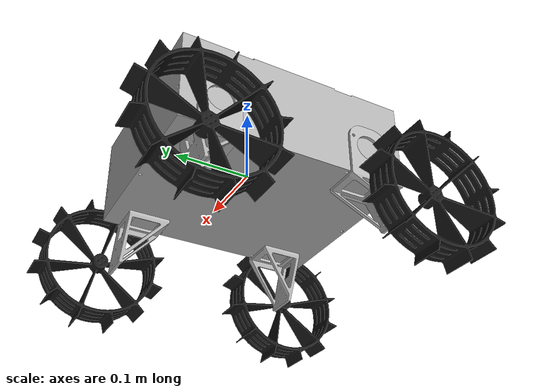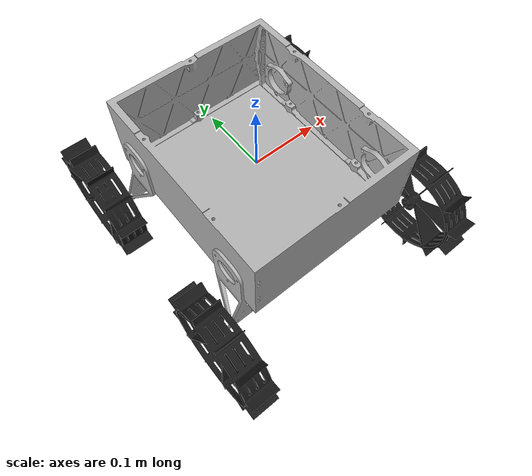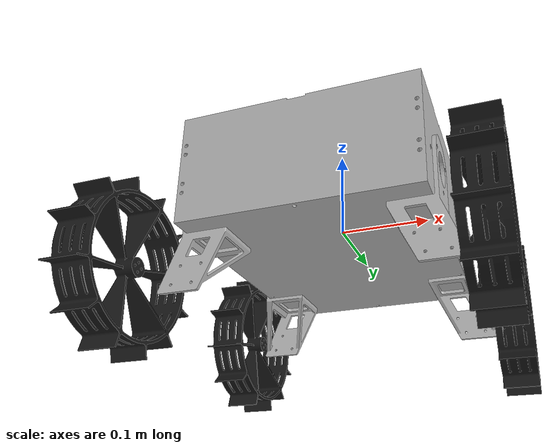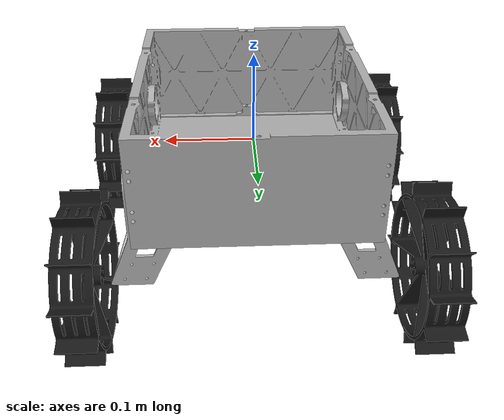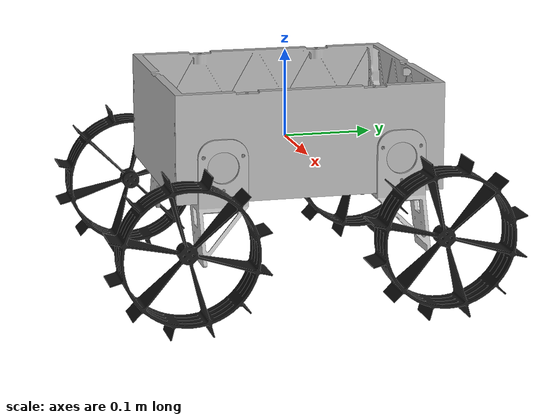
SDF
<?xml version="1.0" ?>
<sdf version="1.9">
  <model name="rover">
    <self_collide>false</self_collide>

    <plugin
      filename="libignition-gazebo-sensors-system.so"
      name="ignition::gazebo::systems::Sensors">
      <render_engine>ogre2</render_engine>
    </plugin>

    <plugin filename="libgz-sim-pose-publisher-system.so" name="gz::sim::systems::PosePublisher">
      <publish_link_pose>true</publish_link_pose>
      <use_pose_vector_msg>true</use_pose_vector_msg>
      <static_publisher>false</static_publisher>
      <update_frequency>20</update_frequency>
    </plugin>

    <!-- CHASSIS -->
    <link name="base_link">
      <pose>0 0 0 0 0 0</pose>
      <inertial>
        <mass>5.0</mass>
        <inertia>
          <ixx>0.2</ixx>
          <iyy>0.2</iyy>
          <izz>0.2</izz>
        </inertia>
      </inertial>
      <visual name="visual">
        <pose>0 0 0 1.5708 0 0</pose>
        <geometry>
          <mesh>
            <uri>model://src/rover_sim/rover/meshes/chassis.STL</uri>
            <!-- Scale to 1 1 1 if STL is already in meters -->
            <scale>0.001 0.001 0.001</scale>
          </mesh>
        </geometry>
        <material>
          <ambient>0.7 0.7 0.7 1</ambient>
          <diffuse>0.7 0.7 0.7 1</diffuse>
          <specular>0.1 0.1 0.1 1</specular>
        </material>
      </visual>

      <collision name="collision">
        <pose>0 0 0 1.5708 0 0</pose>
        <geometry>
            <mesh>
            <uri>model://src/rover_sim/rover/meshes/chassis.STL</uri>
            <scale>0.001 0.001 0.001</scale>
            </mesh>
        </geometry>
      </collision>

      <!-- LiDAR Sensor Definition -->
      <sensor name="lidar_sensor" type="gpu_lidar">
        <pose>0 0 0.1 0 0 0</pose>
        <update_rate>10</update_rate> <!-- Hz -->
        <topic>/lidar</topic>
        <gz_frame_id>base_link</gz_frame_id>
        <ray>
          <scan>
            <horizontal>
              <samples>360</samples>
              <resolution>1</resolution>
              <min_angle>-3.14159</min_angle>
              <max_angle>3.14159</max_angle>
            </horizontal>

            <vertical>
              <samples>10</samples> <!-- Number of vertical rings -->
              <resolution>1</resolution>
              <min_angle>-0.1</min_angle> <!-- - degs -->
              <max_angle>0.1</max_angle>  <!-- + degs -->
            </vertical>

          </scan>
          <range>
            <min>0.1</min>
            <max>1.0</max>
            <resolution>0.01</resolution>
          </range>
        </ray>
        <always_on>true</always_on>
        <visualize>true</visualize>
      </sensor>
    </link>

    <!-- FRONT LEFT MOUNT -->
    <link name="mount_fl">
      <pose>0.084 -0.074 -0.104 1.5708 0 0</pose>
      <visual name="visual">
        <geometry>
          <mesh>
            <uri>model://src/rover_sim/rover/meshes/mm_FL.STL</uri>
            <scale>0.001 0.001 0.001</scale>
          </mesh>
        </geometry>
      </visual>
    </link>

    <joint name="mount_fl_fixed" type="fixed">
      <parent>base_link</parent>
      <child>mount_fl</child>
    </joint>

    <!-- REAR LEFT MOUNT -->
    <link name="mount_rl">
      <pose>0.004 0.248 -0.104 1.5708 0 0</pose>
      <visual name="visual">
        <geometry>
          <mesh>
            <uri>model://src/rover_sim/rover/meshes/mm_RL.STL</uri>
            <scale>0.001 0.001 0.001</scale>
          </mesh>
        </geometry>
      </visual>
    </link>

    <joint name="mount_rl_fixed" type="fixed">
      <parent>base_link</parent>
      <child>mount_rl</child>
    </joint>

    <!-- FRONT RIGHT MOUNT -->
    <link name="mount_fr">
      <pose>-0.256 0.048 -0.104 1.5708 0 0</pose>
      <visual name="visual">
        <geometry>
          <mesh>
            <uri>model://src/rover_sim/rover/meshes/mm_FR.STL</uri>
            <scale>0.001 0.001 0.001</scale>
          </mesh>
        </geometry>
      </visual>
    </link>

    <joint name="mount_fr_fixed" type="fixed">
      <parent>base_link</parent>
      <child>mount_fr</child>
    </joint>

    <!-- REAR RIGHT MOUNT -->
    <link name="mount_rr">
      <pose>-0.256 0.249 -0.104 1.5708 0 0</pose>
      <visual name="visual">
        <geometry>
          <mesh>
            <uri>model://src/rover_sim/rover/meshes/mm_RR.STL</uri>
            <scale>0.001 0.001 0.001</scale>
          </mesh>
        </geometry>
      </visual>
    </link>

    <joint name="mount_rr_fixed" type="fixed">
      <parent>base_link</parent>
      <child>mount_rr</child>
    </joint>

    <!-- WHEEL MACRO -->
    <!-- Front Left Wheel -->
    <link name="wheel_fl">
      <pose>-0.174 0.135 -0.082 0 0 0</pose>
      <inertial>
        <mass>1.0</mass>
        <inertia>
          <ixx>0.001</ixx><iyy>0.001</iyy><izz>0.001</izz>
        </inertia>
      </inertial>
      <visual name="visual">
        <geometry>
          <mesh>
            <uri>model://src/rover_sim/rover/meshes/wheel.stl</uri>
            <scale>0.001 0.001 0.001</scale>
          </mesh>
        </geometry>
        <material>
          <ambient>0.1 0.1 0.1 1</ambient>
          <diffuse>0.1 0.1 0.1 1</diffuse>
        </material>
      </visual>

      <!-- using a cylinder for physics since mesh is too high-poly -->
      <collision name="collision">
        <pose>0 0 0 0 1.5708 0</pose>
        <geometry>
          <cylinder>
            <radius>0.09</radius>
            <length>0.03</length>
          </cylinder>
        </geometry>
      </collision>
    </link>

    <!-- Rear Left Wheel -->
    <link name="wheel_rl">
      <pose>-0.174 -0.15 -0.082 0 0 0</pose>
      <inertial>
        <mass>1.0</mass>
        <inertia>
          <ixx>0.001</ixx><iyy>0.001</iyy><izz>0.001</izz>
        </inertia>
      </inertial>
      <visual name="visual">
        <geometry>
          <mesh>
            <uri>model://src/rover_sim/rover/meshes/wheel.stl</uri>
            <scale>0.001 0.001 0.001</scale>
          </mesh>
        </geometry>
        <material>
          <ambient>0.1 0.1 0.1 1</ambient>
          <diffuse>0.1 0.1 0.1 1</diffuse>
        </material>
      </visual>

      <!-- using a cylinder for physics since mesh is too high-poly -->
      <collision name="collision">
        <pose>0 0 0 0 1.5708 0</pose>
        <geometry>
          <cylinder>
            <radius>0.09</radius>
            <length>0.03</length>
          </cylinder>
        </geometry>
      </collision>
    </link>

    <!-- Front Right Wheel -->
    <link name="wheel_fr">
      <pose>0.176 0.135 -0.082 0 3.1415 0</pose>
      <inertial>
        <mass>1.0</mass>
        <inertia>
          <ixx>0.001</ixx><iyy>0.001</iyy><izz>0.001</izz>
        </inertia>
      </inertial>
      <visual name="visual">
        <geometry>
          <mesh>
            <uri>model://src/rover_sim/rover/meshes/wheel.stl</uri>
            <scale>0.001 0.001 0.001</scale>
          </mesh>
        </geometry>
        <material>
          <ambient>0.1 0.1 0.1 1</ambient>
          <diffuse>0.1 0.1 0.1 1</diffuse>
        </material>
      </visual>

      <!-- using a cylinder for physics since mesh is too high-poly -->
      <collision name="collision">
        <pose>0 0 0 0 1.5708 0</pose>
        <geometry>
          <cylinder>
            <radius>0.09</radius>
            <length>0.03</length>
          </cylinder>
        </geometry>
      </collision>
    </link>

    <!-- Rear Right Wheel -->
    <link name="wheel_rr">
      <pose>0.176 -0.15 -0.082 0 3.1415 0</pose>
      <inertial>
        <mass>1.0</mass>
        <inertia>
          <ixx>0.001</ixx><iyy>0.001</iyy><izz>0.001</izz>
        </inertia>
      </inertial>
      <visual name="visual">
        <geometry>
          <mesh>
            <uri>model://src/rover_sim/rover/meshes/wheel.stl</uri>
            <scale>0.001 0.001 0.001</scale>
          </mesh>
        </geometry>
        <material>
          <ambient>0.1 0.1 0.1 1</ambient>
          <diffuse>0.1 0.1 0.1 1</diffuse>
        </material>
      </visual>

      <!-- using a cylinder for physics since mesh is too high-poly -->
      <collision name="collision">
        <pose>0 0 0 0 1.5708 0</pose>
        <geometry>
          <cylinder>
            <radius>0.09</radius>
            <length>0.03</length>
          </cylinder>
        </geometry>
      </collision>
    </link>

    <!-- JOINTS -->
    <joint name="wheel_fl_joint" type="revolute">
      <parent>mount_fl</parent>
      <child>wheel_fl</child>

      <!-- pose relative to mount -->
      <pose>0 0 0 0 0 0</pose>
      <axis>
        <xyz>1 0 0</xyz> <!-- change if the wheel spins the wrong way -->
        <dynamics>
          <damping>0.1</damping>   <!-- Resists velocity -->
          <friction>0.1</friction>  <!-- Initial resistance to start spinning -->
        </dynamics>
        <limit><effort>100</effort><velocity>100</velocity></limit>
      </axis>
    </joint>

    <joint name="wheel_rl_joint" type="revolute">
      <parent>mount_rl</parent>
      <child>wheel_rl</child>

      <!-- pose relative to mount -->
      <pose>0 0 0 0 0 0</pose>
      <axis>
        <xyz>1 0 0</xyz> <!-- change if the wheel spins the wrong way -->
        <dynamics>
          <damping>0.1</damping>   <!-- Resists velocity -->
          <friction>0.1</friction>  <!-- Initial resistance to start spinning -->
        </dynamics>
        <limit><effort>100</effort><velocity>100</velocity></limit>
      </axis>
    </joint>

    <joint name="wheel_fr_joint" type="revolute">
      <parent>mount_fr</parent>
      <child>wheel_fr</child>

      <!-- pose relative to mount -->
      <pose>0 0 0 0 0 0</pose>
      <axis>
        <xyz>-1 0 0</xyz> <!-- change if the wheel spins the wrong way -->
        <dynamics>
          <damping>0.1</damping>   <!-- Resists velocity -->
          <friction>0.1</friction>  <!-- Initial resistance to start spinning -->
        </dynamics>
        <limit><effort>100</effort><velocity>100</velocity></limit>
      </axis>
    </joint>

    <joint name="wheel_rr_joint" type="revolute">
      <parent>mount_rr</parent>
      <child>wheel_rr</child>

      <!-- pose relative to mount -->
      <pose>0 0 0 0 0 0</pose>
      <axis>
        <xyz>-1 0 0</xyz> <!-- change if the wheel spins the wrong way -->
        <dynamics>
          <damping>0.1</damping>   <!-- Resists velocity -->
          <friction>0.1</friction>  <!-- Initial resistance to start spinning -->
        </dynamics>
        <limit><effort>100</effort><velocity>100</velocity></limit>
      </axis>
    </joint>

    <!-- PLUGINS -->
    <!-- differential drive plugin configured for skid steering-->
    <!-- PLUGINS -->
    <plugin
      filename="gz-sim-diff-drive-system"
      name="gz::sim::systems::DiffDrive">

      <left_joint>wheel_fl_joint</left_joint>
      <left_joint>wheel_rl_joint</left_joint>

      <right_joint>wheel_fr_joint</right_joint>
      <right_joint>wheel_rr_joint</right_joint>

      <wheel_separation>0.35</wheel_separation>
      <wheel_radius>0.09</wheel_radius>

      <topic>cmd_vel</topic>
      <odom_topic>odom</odom_topic>
      <tf_topic>tf</tf_topic>
      <frame_id>odom</frame_id>
      <child_frame_id>base_link</child_frame_id>
    </plugin>

    <plugin
      filename="gz-sim-joint-state-publisher-system"
      name="gz::sim::systems::JointStatePublisher">
    </plugin>

  </model>
</sdf>
